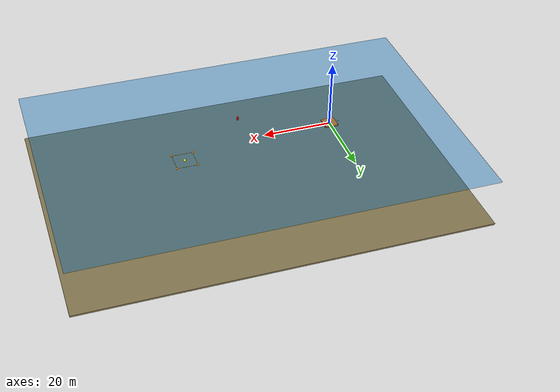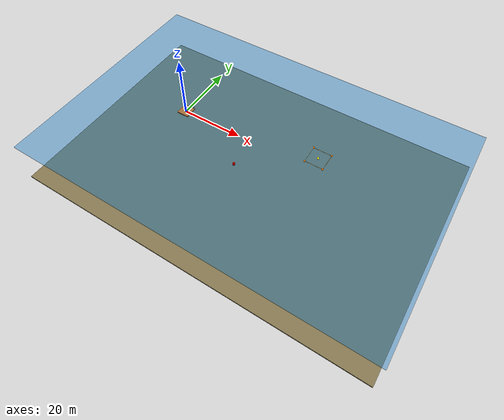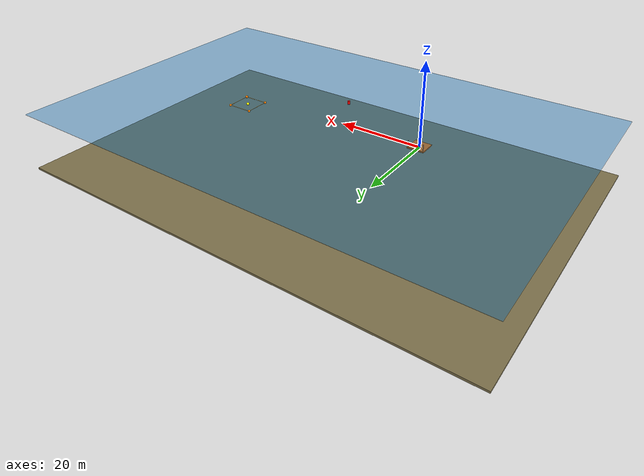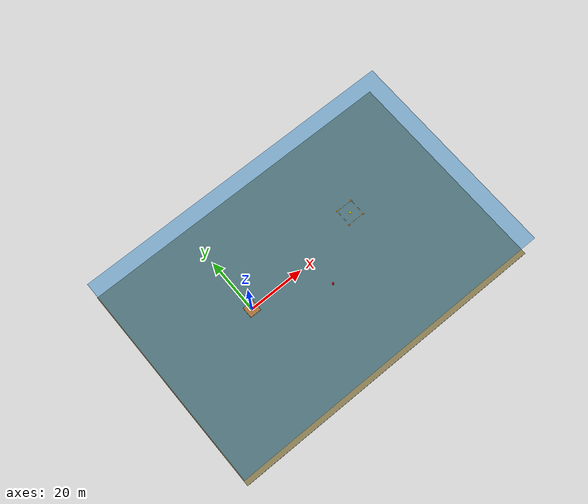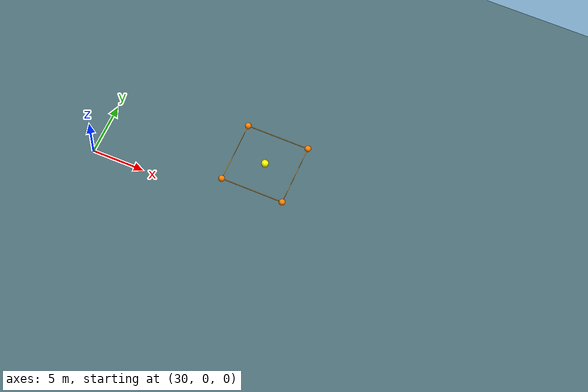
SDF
<?xml version="1.0" ?>
<sdf version="1.10">
  <world name="teknofest_theme2">

    <physics name="default_physics" default="true" type="ode">
      <max_step_size>0.001</max_step_size>
      <real_time_factor>1.0</real_time_factor>
      <real_time_update_rate>1000</real_time_update_rate>
      <ode>
        <solver><type>quick</type><iters>50</iters><sor>1.3</sor></solver>
        <constraints>
          <cfm>0.0</cfm><erp>0.2</erp>
          <contact_max_correcting_vel>0.1</contact_max_correcting_vel>
          <contact_surface_layer>0.001</contact_surface_layer>
        </constraints>
      </ode>
    </physics>

    <light name="sun" type="directional">
      <cast_shadows>true</cast_shadows>
      <pose>0 0 100 0 0 0</pose>
      <diffuse>0.7 0.7 0.7 1</diffuse>
      <specular>0.1 0.1 0.1 1</specular>
      <direction>-0.5 0.1 -0.9</direction>
    </light>

    <light name="underwater_ambient" type="point">
      <pose>25 0 -5 0 0 0</pose>
      <diffuse>0.2 0.3 0.5 1</diffuse>
      <specular>0.0 0.0 0.0 1</specular>
      <attenuation>
        <range>50</range><linear>0.1</linear>
        <constant>0.5</constant><quadratic>0.01</quadratic>
      </attenuation>
    </light>

    <plugin filename="gz-sim-physics-system" name="gz::sim::systems::Physics"/>
    <plugin filename="gz-sim-user-commands-system" name="gz::sim::systems::UserCommands"/>
    <plugin filename="gz-sim-scene-broadcaster-system" name="gz::sim::systems::SceneBroadcaster"/>
    <plugin filename="gz-sim-sensors-system" name="gz::sim::systems::Sensors">
      <render_engine>ogre2</render_engine>
    </plugin>
    <plugin filename="gz-sim-imu-system" name="gz::sim::systems::Imu"/>
    <plugin filename="gz-sim-buoyancy-system" name="gz::sim::systems::Buoyancy">
      <graded_buoyancy>
        <default_density>1000</default_density>
        <density_change>
          <above_depth>0</above_depth>
          <density>1.0</density>
        </density_change>
      </graded_buoyancy>
    </plugin>

    <!-- ZEMIN -->
    <model name="seabed">
      <static>true</static>
      <link name="seabed_link">
        <pose>25 0 -15 0 0 0</pose>
        <collision name="col">
          <geometry><box><size>120 80 0.5</size></box></geometry>
        </collision>
        <visual name="vis">
          <geometry><box><size>120 80 0.5</size></box></geometry>
          <material>
            <ambient>0.4 0.35 0.25 1</ambient>
            <diffuse>0.5 0.45 0.3 1</diffuse>
          </material>
        </visual>
      </link>
    </model>

    <!-- SU YÜZEYİ -->
    <model name="water_surface">
      <static>true</static>
      <link name="water_link">
        <pose>25 0 0 0 0 0</pose>
        <visual name="water_visual">
          <geometry><box><size>120 80 0.1</size></box></geometry>
          <material>
            <ambient>0.0 0.3 0.6 0.4</ambient>
            <diffuse>0.0 0.4 0.7 0.4</diffuse>
          </material>
          <transparency>0.6</transparency>
        </visual>
      </link>
    </model>

    <!-- İSKELE -->
    <model name="iskele">
      <static>true</static>
      <pose>0 0 0 0 0 0</pose>
      <link name="iskele_link">
        <visual name="platform">
          <pose>0 0 0.25 0 0 0</pose>
          <geometry><box><size>4 4 0.3</size></box></geometry>
          <material><ambient>0.4 0.25 0.1 1</ambient><diffuse>0.6 0.4 0.2 1</diffuse></material>
        </visual>
        <collision name="platform_col">
          <pose>0 0 0.25 0 0 0</pose>
          <geometry><box><size>4 4 0.3</size></box></geometry>
        </collision>
        <visual name="start_marker">
          <pose>0 0 0.42 0 0 0</pose>
          <geometry><cylinder><radius>0.5</radius><length>0.02</length></cylinder></geometry>
          <material><ambient>1 1 0 1</ambient><diffuse>1 1 0 1</diffuse></material>
        </visual>
        <visual name="post1">
          <pose>1.8 1.8 1 0 0 0</pose>
          <geometry><cylinder><radius>0.05</radius><length>2</length></cylinder></geometry>
          <material><ambient>0.5 0.5 0.5 1</ambient></material>
        </visual>
        <visual name="post2">
          <pose>-1.8 1.8 1 0 0 0</pose>
          <geometry><cylinder><radius>0.05</radius><length>2</length></cylinder></geometry>
          <material><ambient>0.5 0.5 0.5 1</ambient></material>
        </visual>
      </link>
    </model>

    <!-- DÖNME ŞAMANDIRASI (Kırmızı) @ (25, -10) -->
    <model name="rotation_buoy">
      <static>true</static>
      <pose>25 -10 0.3 0 0 0</pose>
      <link name="buoy_link">
        <visual name="buoy_body">
          <geometry><cylinder><radius>0.35</radius><length>0.8</length></cylinder></geometry>
          <material>
            <ambient>0.9 0.1 0.1 1</ambient>
            <diffuse>1.0 0.0 0.0 1</diffuse>
          </material>
        </visual>
        <collision name="buoy_col">
          <geometry><cylinder><radius>0.35</radius><length>0.8</length></cylinder></geometry>
        </collision>
        <visual name="buoy_top">
          <pose>0 0 0.5 0 0 0</pose>
          <geometry><sphere><radius>0.15</radius></sphere></geometry>
          <material><ambient>1 0.3 0.3 1</ambient></material>
        </visual>
      </link>
    </model>

    <!-- BİTİŞ KARESİ KÖŞELERİ (turuncu) -->
    <model name="corner_buoy_1">
      <static>true</static><pose>42 2 0.3 0 0 0</pose>
      <link name="link">
        <visual name="v"><geometry><sphere><radius>0.3</radius></sphere></geometry>
          <material><ambient>1 0.5 0 1</ambient><diffuse>1 0.5 0 1</diffuse></material></visual>
        <collision name="c"><geometry><sphere><radius>0.3</radius></sphere></geometry></collision>
      </link>
    </model>

    <model name="corner_buoy_2">
      <static>true</static><pose>42 8 0.3 0 0 0</pose>
      <link name="link">
        <visual name="v"><geometry><sphere><radius>0.3</radius></sphere></geometry>
          <material><ambient>1 0.5 0 1</ambient><diffuse>1 0.5 0 1</diffuse></material></visual>
        <collision name="c"><geometry><sphere><radius>0.3</radius></sphere></geometry></collision>
      </link>
    </model>

    <model name="corner_buoy_3">
      <static>true</static><pose>48 2 0.3 0 0 0</pose>
      <link name="link">
        <visual name="v"><geometry><sphere><radius>0.3</radius></sphere></geometry>
          <material><ambient>1 0.5 0 1</ambient><diffuse>1 0.5 0 1</diffuse></material></visual>
        <collision name="c"><geometry><sphere><radius>0.3</radius></sphere></geometry></collision>
      </link>
    </model>

    <model name="corner_buoy_4">
      <static>true</static><pose>48 8 0.3 0 0 0</pose>
      <link name="link">
        <visual name="v"><geometry><sphere><radius>0.3</radius></sphere></geometry>
          <material><ambient>1 0.5 0 1</ambient><diffuse>1 0.5 0 1</diffuse></material></visual>
        <collision name="c"><geometry><sphere><radius>0.3</radius></sphere></geometry></collision>
      </link>
    </model>

    <!-- MERKEZ ŞAMANDIRA (sarı) -->
    <model name="center_buoy">
      <static>true</static><pose>45 5 0.3 0 0 0</pose>
      <link name="link">
        <visual name="v"><geometry><sphere><radius>0.35</radius></sphere></geometry>
          <material><ambient>1 1 0 1</ambient><diffuse>1 1 0 1</diffuse></material></visual>
        <collision name="c"><geometry><sphere><radius>0.35</radius></sphere></geometry></collision>
      </link>
    </model>

    <!-- KARE İPLERİ -->
    <model name="rope_left"><static>true</static><pose>42 5 0.3 0 0 0</pose>
      <link name="link"><visual name="v"><geometry><box><size>0.05 6 0.05</size></box></geometry>
        <material><ambient>0.8 0.6 0.2 1</ambient></material></visual></link></model>

    <model name="rope_right"><static>true</static><pose>48 5 0.3 0 0 0</pose>
      <link name="link"><visual name="v"><geometry><box><size>0.05 6 0.05</size></box></geometry>
        <material><ambient>0.8 0.6 0.2 1</ambient></material></visual></link></model>

    <model name="rope_front"><static>true</static><pose>45 8 0.3 0 0 0</pose>
      <link name="link"><visual name="v"><geometry><box><size>6 0.05 0.05</size></box></geometry>
        <material><ambient>0.8 0.6 0.2 1</ambient></material></visual></link></model>

    <model name="rope_back"><static>true</static><pose>45 2 0.3 0 0 0</pose>
      <link name="link"><visual name="v"><geometry><box><size>6 0.05 0.05</size></box></geometry>
        <material><ambient>0.8 0.6 0.2 1</ambient></material></visual></link></model>

  </world>
</sdf>
